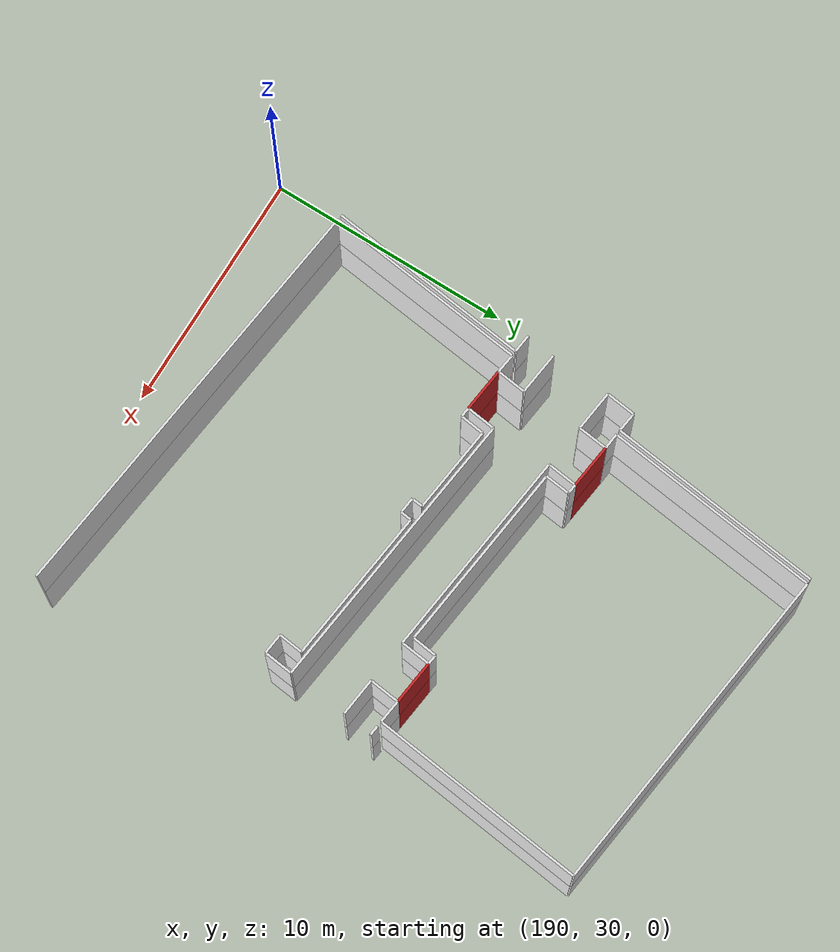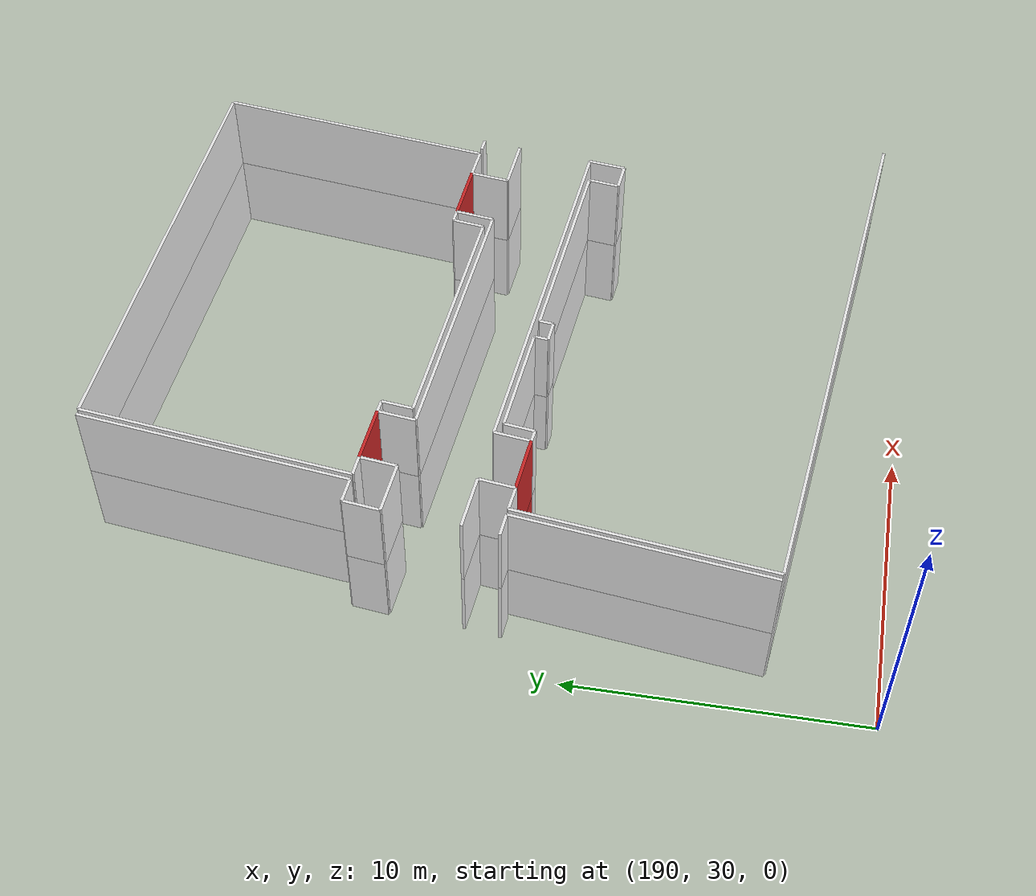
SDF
<sdf version="1.6">
 <world name="default">
  <model name="wall_194.4_46.6_1.5">
   <static>true</static>
   <pose>194.41500000000815 46.64999999990687 1.5 0 0 3.0193009299849303</pose>
   <link name="link">
    <visual name="visual">
     <geometry><box><size>1.8034688796345346 0.1 3</size></box></geometry>
     <material>
      <script><uri>file://media/materials/scripts/gazebo.material</uri><name>Gazebo/Red</name></script>
     </material>
    </visual>
    <collision name="collision"><geometry><box><size>1.8034688796345346 0.1 3</size></box></geometry></collision>
   </link>
  </model>
  <model name="wall_204.7_45.4_1.5">
   <static>true</static>
   <pose>204.74499999999534 45.40499999979511 1.5 0 0 3.0248080581431034</pose>
   <link name="link">
    <visual name="visual">
     <geometry><box><size>1.8022763384447233 0.1 3</size></box></geometry>
     <material>
      <script><uri>file://media/materials/scripts/gazebo.material</uri><name>Gazebo/Red</name></script>
     </material>
    </visual>
    <collision name="collision"><geometry><box><size>1.8022763384447233 0.1 3</size></box></geometry></collision>
   </link>
  </model>
  <model name="wall_194.0_41.8_1.5">
   <static>true</static>
   <pose>194.0350000000035 41.765000000130385 1.5 0 0 -0.11678459545045303</pose>
   <link name="link">
    <visual name="visual">
     <geometry><box><size>1.8022763383869123 0.1 3</size></box></geometry>
     <material>
      <script><uri>file://media/materials/scripts/gazebo.material</uri><name>Gazebo/Red</name></script>
     </material>
    </visual>
    <collision name="collision"><geometry><box><size>1.8022763383869123 0.1 3</size></box></geometry></collision>
   </link>
  </model>
  <model name="wall_194.4_46.6_4.5">
   <static>true</static>
   <pose>194.41500000000815 46.64999999990687 4.5 0 0 3.0193009299849303</pose>
   <link name="link">
    <visual name="visual">
     <geometry><box><size>1.8034688796345346 0.1 3</size></box></geometry>
     <material>
      <script><uri>file://media/materials/scripts/gazebo.material</uri><name>Gazebo/Red</name></script>
     </material>
    </visual>
    <collision name="collision"><geometry><box><size>1.8034688796345346 0.1 3</size></box></geometry></collision>
   </link>
  </model>
  <model name="wall_204.7_45.4_4.5">
   <static>true</static>
   <pose>204.74499999999534 45.40499999979511 4.5 0 0 3.0248080581431034</pose>
   <link name="link">
    <visual name="visual">
     <geometry><box><size>1.8022763384447233 0.1 3</size></box></geometry>
     <material>
      <script><uri>file://media/materials/scripts/gazebo.material</uri><name>Gazebo/Red</name></script>
     </material>
    </visual>
    <collision name="collision"><geometry><box><size>1.8022763384447233 0.1 3</size></box></geometry></collision>
   </link>
  </model>
  <model name="wall_194.0_41.8_4.5">
   <static>true</static>
   <pose>194.0350000000035 41.765000000130385 4.5 0 0 -0.11678459545045303</pose>
   <link name="link">
    <visual name="visual">
     <geometry><box><size>1.8022763383869123 0.1 3</size></box></geometry>
     <material>
      <script><uri>file://media/materials/scripts/gazebo.material</uri><name>Gazebo/Red</name></script>
     </material>
    </visual>
    <collision name="collision"><geometry><box><size>1.8022763383869123 0.1 3</size></box></geometry></collision>
   </link>
  </model>
  <model name="wall_193.2_51.3_1.5">
   <static>true</static>
   <pose>193.20999999999185 51.294999999925494 1.5 0 0 -1.6919586614511988</pose>
   <link name="link">
    <visual name="visual">
     <geometry><box><size>8.93550782004122 0.1 3</size></box></geometry>
     <material>
      <script><uri>file://media/materials/scripts/gazebo.material</uri><name>Gazebo/White</name></script>
     </material>
    </visual>
    <collision name="collision"><geometry><box><size>8.93550782004122 0.1 3</size></box></geometry></collision>
   </link>
  </model>
  <model name="wall_192.3_46.9_1.5">
   <static>true</static>
   <pose>192.26999999998952 46.90999999991618 1.5 0 0 3.0172376589266166</pose>
   <link name="link">
    <visual name="visual">
     <geometry><box><size>0.806225774829855 0.1 3</size></box></geometry>
     <material>
      <script><uri>file://media/materials/scripts/gazebo.material</uri><name>Gazebo/White</name></script>
     </material>
    </visual>
    <collision name="collision"><geometry><box><size>0.806225774829855 0.1 3</size></box></geometry></collision>
   </link>
  </model>
  <model name="wall_207.1_49.6_1.5">
   <static>true</static>
   <pose>207.11999999999534 49.62000000011176 1.5 0 0 -1.6918235466009592</pose>
   <link name="link">
    <visual name="visual">
     <geometry><box><size>8.945434589662185 0.1 3</size></box></geometry>
     <material>
      <script><uri>file://media/materials/scripts/gazebo.material</uri><name>Gazebo/White</name></script>
     </material>
    </visual>
    <collision name="collision"><geometry><box><size>8.945434589662185 0.1 3</size></box></geometry></collision>
   </link>
  </model>
  <model name="wall_206.1_45.2_1.5">
   <static>true</static>
   <pose>206.11000000001513 45.23999999999069 1.5 0 0 3.0146198643464803</pose>
   <link name="link">
    <visual name="visual">
     <geometry><box><size>0.9476286191960649 0.1 3</size></box></geometry>
     <material>
      <script><uri>file://media/materials/scripts/gazebo.material</uri><name>Gazebo/White</name></script>
     </material>
    </visual>
    <collision name="collision"><geometry><box><size>0.9476286191960649 0.1 3</size></box></geometry></collision>
   </link>
  </model>
  <model name="wall_203.7_45.5_1.5">
   <static>true</static>
   <pose>203.65499999999884 45.53499999991618 1.5 0 0 3.0140830946554305</pose>
   <link name="link">
    <visual name="visual">
     <geometry><box><size>0.39319206501840065 0.1 3</size></box></geometry>
     <material>
      <script><uri>file://media/materials/scripts/gazebo.material</uri><name>Gazebo/White</name></script>
     </material>
    </visual>
    <collision name="collision"><geometry><box><size>0.39319206501840065 0.1 3</size></box></geometry></collision>
   </link>
  </model>
  <model name="wall_203.4_45.1_1.5">
   <static>true</static>
   <pose>203.39500000001863 45.050000000046566 1.5 0 0 -1.6975638618984608</pose>
   <link name="link">
    <visual name="visual">
     <geometry><box><size>1.028250942153329 0.1 3</size></box></geometry>
     <material>
      <script><uri>file://media/materials/scripts/gazebo.material</uri><name>Gazebo/White</name></script>
     </material>
    </visual>
    <collision name="collision"><geometry><box><size>1.028250942153329 0.1 3</size></box></geometry></collision>
   </link>
  </model>
  <model name="wall_199.5_45.0_1.5">
   <static>true</static>
   <pose>199.46000000002095 45.00500000012107 1.5 0 0 3.022010892460215</pose>
   <link name="link">
    <visual name="visual">
     <geometry><box><size>7.795671876122522 0.1 3</size></box></geometry>
     <material>
      <script><uri>file://media/materials/scripts/gazebo.material</uri><name>Gazebo/White</name></script>
     </material>
    </visual>
    <collision name="collision"><geometry><box><size>7.795671876122522 0.1 3</size></box></geometry></collision>
   </link>
  </model>
  <model name="wall_195.7_46.0_1.5">
   <static>true</static>
   <pose>195.65000000002328 45.980000000214204 1.5 0 0 1.4536875822346544</pose>
   <link name="link">
    <visual name="visual">
     <geometry><box><size>1.0270345661353761 0.1 3</size></box></geometry>
     <material>
      <script><uri>file://media/materials/scripts/gazebo.material</uri><name>Gazebo/White</name></script>
     </material>
    </visual>
    <collision name="collision"><geometry><box><size>1.0270345661353761 0.1 3</size></box></geometry></collision>
   </link>
  </model>
  <model name="wall_195.5_46.5_1.5">
   <static>true</static>
   <pose>195.5100000000093 46.515000000130385 1.5 0 0 3.017237659508693</pose>
   <link name="link">
    <visual name="visual">
     <geometry><box><size>0.4031128874149275 0.1 3</size></box></geometry>
     <material>
      <script><uri>file://media/materials/scripts/gazebo.material</uri><name>Gazebo/White</name></script>
     </material>
    </visual>
    <collision name="collision"><geometry><box><size>0.4031128874149275 0.1 3</size></box></geometry></collision>
   </link>
  </model>
  <model name="wall_193.2_46.8_1.5">
   <static>true</static>
   <pose>193.19500000000698 46.794999999925494 1.5 0 0 3.034313797491963</pose>
   <link name="link">
    <visual name="visual">
     <geometry><box><size>0.6537583652023057 0.1 3</size></box></geometry>
     <material>
      <script><uri>file://media/materials/scripts/gazebo.material</uri><name>Gazebo/White</name></script>
     </material>
    </visual>
    <collision name="collision"><geometry><box><size>0.6537583652023057 0.1 3</size></box></geometry></collision>
   </link>
  </model>
  <model name="wall_193.4_51.3_1.5">
   <static>true</static>
   <pose>193.4100000000035 51.27000000001863 1.5 0 0 1.4497691069823746</pose>
   <link name="link">
    <visual name="visual">
     <geometry><box><size>8.945434589669212 0.1 3</size></box></geometry>
     <material>
      <script><uri>file://media/materials/scripts/gazebo.material</uri><name>Gazebo/White</name></script>
     </material>
    </visual>
    <collision name="collision"><geometry><box><size>8.945434589669212 0.1 3</size></box></geometry></collision>
   </link>
  </model>
  <model name="wall_200.8_54.9_1.5">
   <static>true</static>
   <pose>200.80499999999302 54.88500000000931 1.5 0 0 -0.1197740511061136</pose>
   <link name="link">
    <visual name="visual">
     <geometry><box><size>13.808931892028117 0.1 3</size></box></geometry>
     <material>
      <script><uri>file://media/materials/scripts/gazebo.material</uri><name>Gazebo/White</name></script>
     </material>
    </visual>
    <collision name="collision"><geometry><box><size>13.808931892028117 0.1 3</size></box></geometry></collision>
   </link>
  </model>
  <model name="wall_206.7_40.8_1.5">
   <static>true</static>
   <pose>206.7399999999907 40.83500000019558 1.5 0 0 1.4536875822110042</pose>
   <link name="link">
    <visual name="visual">
     <geometry><box><size>1.198206993749794 0.1 3</size></box></geometry>
     <material>
      <script><uri>file://media/materials/scripts/gazebo.material</uri><name>Gazebo/White</name></script>
     </material>
    </visual>
    <collision name="collision"><geometry><box><size>1.198206993749794 0.1 3</size></box></geometry></collision>
   </link>
  </model>
  <model name="wall_200.9_42.1_1.5">
   <static>true</static>
   <pose>200.94500000000698 42.140000000130385 1.5 0 0 3.0211217461725024</pose>
   <link name="link">
    <visual name="visual">
     <geometry><box><size>11.815637942969962 0.1 3</size></box></geometry>
     <material>
      <script><uri>file://media/materials/scripts/gazebo.material</uri><name>Gazebo/White</name></script>
     </material>
    </visual>
    <collision name="collision"><geometry><box><size>11.815637942969962 0.1 3</size></box></geometry></collision>
   </link>
  </model>
  <model name="wall_195.0_42.3_1.5">
   <static>true</static>
   <pose>195.00500000000466 42.25500000012107 1.5 0 0 -1.696185447161499</pose>
   <link name="link">
    <visual name="visual">
     <geometry><box><size>1.1994165247627664 0.1 3</size></box></geometry>
     <material>
      <script><uri>file://media/materials/scripts/gazebo.material</uri><name>Gazebo/White</name></script>
     </material>
    </visual>
    <collision name="collision"><geometry><box><size>1.1994165247627664 0.1 3</size></box></geometry></collision>
   </link>
  </model>
  <model name="wall_193.2_42.5_1.5">
   <static>true</static>
   <pose>193.2149999999965 42.46500000008382 1.5 0 0 1.4454072064764434</pose>
   <link name="link">
    <visual name="visual">
     <geometry><box><size>1.199416524755487 0.1 3</size></box></geometry>
     <material>
      <script><uri>file://media/materials/scripts/gazebo.material</uri><name>Gazebo/White</name></script>
     </material>
    </visual>
    <collision name="collision"><geometry><box><size>1.199416524755487 0.1 3</size></box></geometry></collision>
   </link>
  </model>
  <model name="wall_192.4_43.2_1.5">
   <static>true</static>
   <pose>192.41499999997905 43.16500000003725 1.5 0 0 3.02216372759244</pose>
   <link name="link">
    <visual name="visual">
     <geometry><box><size>1.7625549636775455 0.1 3</size></box></geometry>
     <material>
      <script><uri>file://media/materials/scripts/gazebo.material</uri><name>Gazebo/White</name></script>
     </material>
    </visual>
    <collision name="collision"><geometry><box><size>1.7625549636775455 0.1 3</size></box></geometry></collision>
   </link>
  </model>
  <model name="wall_191.8_46.4_1.5">
   <static>true</static>
   <pose>191.7949999999837 46.35499999998137 1.5 0 0 -1.6941340277173305</pose>
   <link name="link">
    <visual name="visual">
     <geometry><box><size>1.2192620718766056 0.1 3</size></box></geometry>
     <material>
      <script><uri>file://media/materials/scripts/gazebo.material</uri><name>Gazebo/White</name></script>
     </material>
    </visual>
    <collision name="collision"><geometry><box><size>1.2192620718766056 0.1 3</size></box></geometry></collision>
   </link>
  </model>
  <model name="wall_192.5_45.6_1.5">
   <static>true</static>
   <pose>192.54999999998836 45.64999999990687 1.5 0 0 -0.11990398547329398</pose>
   <link name="link">
    <visual name="visual">
     <geometry><box><size>1.6720047847367918 0.1 3</size></box></geometry>
     <material>
      <script><uri>file://media/materials/scripts/gazebo.material</uri><name>Gazebo/White</name></script>
     </material>
    </visual>
    <collision name="collision"><geometry><box><size>1.6720047847367918 0.1 3</size></box></geometry></collision>
   </link>
  </model>
  <model name="wall_193.5_46.2_1.5">
   <static>true</static>
   <pose>193.45000000001164 46.15499999979511 1.5 0 0 1.4556060450873045</pose>
   <link name="link">
    <visual name="visual">
     <geometry><box><size>1.2180722474113592 0.1 3</size></box></geometry>
     <material>
      <script><uri>file://media/materials/scripts/gazebo.material</uri><name>Gazebo/White</name></script>
     </material>
    </visual>
    <collision name="collision"><geometry><box><size>1.2180722474113592 0.1 3</size></box></geometry></collision>
   </link>
  </model>
  <model name="wall_195.2_45.9_1.5">
   <static>true</static>
   <pose>195.23499999998603 45.925000000046566 1.5 0 0 -1.692148327386132</pose>
   <link name="link">
    <visual name="visual">
     <geometry><box><size>1.239112585668132 0.1 3</size></box></geometry>
     <material>
      <script><uri>file://media/materials/scripts/gazebo.material</uri><name>Gazebo/White</name></script>
     </material>
    </visual>
    <collision name="collision"><geometry><box><size>1.239112585668132 0.1 3</size></box></geometry></collision>
   </link>
  </model>
  <model name="wall_199.4_44.8_1.5">
   <static>true</static>
   <pose>199.42999999999302 44.794999999925494 1.5 0 0 -0.12002913835868392</pose>
   <link name="link">
    <visual name="visual">
     <geometry><box><size>8.601889327419498 0.1 3</size></box></geometry>
     <material>
      <script><uri>file://media/materials/scripts/gazebo.material</uri><name>Gazebo/White</name></script>
     </material>
    </visual>
    <collision name="collision"><geometry><box><size>8.601889327419498 0.1 3</size></box></geometry></collision>
   </link>
  </model>
  <model name="wall_203.8_44.9_1.5">
   <static>true</static>
   <pose>203.77499999999418 44.894999999785796 1.5 0 0 1.4494443262502912</pose>
   <link name="link">
    <visual name="visual">
     <geometry><box><size>1.2391125856610858 0.1 3</size></box></geometry>
     <material>
      <script><uri>file://media/materials/scripts/gazebo.material</uri><name>Gazebo/White</name></script>
     </material>
    </visual>
    <collision name="collision"><geometry><box><size>1.2391125856610858 0.1 3</size></box></geometry></collision>
   </link>
  </model>
  <model name="wall_205.6_44.7_1.5">
   <static>true</static>
   <pose>205.56500000000233 44.67999999993481 1.5 0 0 -1.6911791476372433</pose>
   <link name="link">
    <visual name="visual">
     <geometry><box><size>1.249039630839017 0.1 3</size></box></geometry>
     <material>
      <script><uri>file://media/materials/scripts/gazebo.material</uri><name>Gazebo/White</name></script>
     </material>
    </visual>
    <collision name="collision"><geometry><box><size>1.249039630839017 0.1 3</size></box></geometry></collision>
   </link>
  </model>
  <model name="wall_206.3_44.0_1.5">
   <static>true</static>
   <pose>206.26999999998952 43.96999999997206 1.5 0 0 -0.11487660552311749</pose>
   <link name="link">
    <visual name="visual">
     <geometry><box><size>1.5703502794131905 0.1 3</size></box></geometry>
     <material>
      <script><uri>file://media/materials/scripts/gazebo.material</uri><name>Gazebo/White</name></script>
     </material>
    </visual>
    <collision name="collision"><geometry><box><size>1.5703502794131905 0.1 3</size></box></geometry></collision>
   </link>
  </model>
  <model name="wall_207.0_45.1_1.5">
   <static>true</static>
   <pose>206.99499999999534 45.13500000000931 1.5 0 0 3.0202406523571135</pose>
   <link name="link">
    <visual name="visual">
     <geometry><box><size>0.4130375286274464 0.1 3</size></box></geometry>
     <material>
      <script><uri>file://media/materials/scripts/gazebo.material</uri><name>Gazebo/White</name></script>
     </material>
    </visual>
    <collision name="collision"><geometry><box><size>0.4130375286274464 0.1 3</size></box></geometry></collision>
   </link>
  </model>
  <model name="wall_191.8_42.0_1.5">
   <static>true</static>
   <pose>191.77500000002328 42.03500000014901 1.5 0 0 3.0221637277673166</pose>
   <link name="link">
    <visual name="visual">
     <geometry><box><size>0.7553806987030962 0.1 3</size></box></geometry>
     <material>
      <script><uri>file://media/materials/scripts/gazebo.material</uri><name>Gazebo/White</name></script>
     </material>
    </visual>
    <collision name="collision"><geometry><box><size>0.7553806987030962 0.1 3</size></box></geometry></collision>
   </link>
  </model>
  <model name="wall_192.7_41.9_1.5">
   <static>true</static>
   <pose>192.74499999999534 41.920000000158325 1.5 0 0 -0.12591262579595308</pose>
   <link name="link">
    <visual name="visual">
     <geometry><box><size>0.7963039621133917 0.1 3</size></box></geometry>
     <material>
      <script><uri>file://media/materials/scripts/gazebo.material</uri><name>Gazebo/White</name></script>
     </material>
    </visual>
    <collision name="collision"><geometry><box><size>0.7963039621133917 0.1 3</size></box></geometry></collision>
   </link>
  </model>
  <model name="wall_195.1_41.6_1.5">
   <static>true</static>
   <pose>195.125 41.63500000000931 1.5 0 0 -0.12750955891553742</pose>
   <link name="link">
    <visual name="visual">
     <geometry><box><size>0.39319206507613574 0.1 3</size></box></geometry>
     <material>
      <script><uri>file://media/materials/scripts/gazebo.material</uri><name>Gazebo/White</name></script>
     </material>
    </visual>
    <collision name="collision"><geometry><box><size>0.39319206507613574 0.1 3</size></box></geometry></collision>
   </link>
  </model>
  <model name="wall_195.4_42.1_1.5">
   <static>true</static>
   <pose>195.3850000000093 42.10499999998137 1.5 0 0 1.4402302320197897</pose>
   <link name="link">
    <visual name="visual">
     <geometry><box><size>0.9984988735315504 0.1 3</size></box></geometry>
     <material>
      <script><uri>file://media/materials/scripts/gazebo.material</uri><name>Gazebo/White</name></script>
     </material>
    </visual>
    <collision name="collision"><geometry><box><size>0.9984988735315504 0.1 3</size></box></geometry></collision>
   </link>
  </model>
  <model name="wall_197.2_42.4_1.5">
   <static>true</static>
   <pose>197.22000000000116 42.390000000130385 1.5 0 0 -0.11809202839903185</pose>
   <link name="link">
    <visual name="visual">
     <geometry><box><size>3.5648281865735205 0.1 3</size></box></geometry>
     <material>
      <script><uri>file://media/materials/scripts/gazebo.material</uri><name>Gazebo/White</name></script>
     </material>
    </visual>
    <collision name="collision"><geometry><box><size>3.5648281865735205 0.1 3</size></box></geometry></collision>
   </link>
  </model>
  <model name="wall_199.0_42.0_1.5">
   <static>true</static>
   <pose>198.9649999999965 41.950000000186265 1.5 0 0 -1.6790669176390405</pose>
   <link name="link">
    <visual name="visual">
     <geometry><box><size>0.46270941201207827 0.1 3</size></box></geometry>
     <material>
      <script><uri>file://media/materials/scripts/gazebo.material</uri><name>Gazebo/White</name></script>
     </material>
    </visual>
    <collision name="collision"><geometry><box><size>0.46270941201207827 0.1 3</size></box></geometry></collision>
   </link>
  </model>
  <model name="wall_199.3_41.7_1.5">
   <static>true</static>
   <pose>199.26500000001397 41.68500000005588 1.5 0 0 -0.10727885609783018</pose>
   <link name="link">
    <visual name="visual">
     <geometry><box><size>0.6537583652023057 0.1 3</size></box></geometry>
     <material>
      <script><uri>file://media/materials/scripts/gazebo.material</uri><name>Gazebo/White</name></script>
     </material>
    </visual>
    <collision name="collision"><geometry><box><size>0.6537583652023057 0.1 3</size></box></geometry></collision>
   </link>
  </model>
  <model name="wall_199.6_41.9_1.5">
   <static>true</static>
   <pose>199.6150000000198 41.875 1.5 0 0 1.460139105691986</pose>
   <link name="link">
    <visual name="visual">
     <geometry><box><size>0.45276925709071053 0.1 3</size></box></geometry>
     <material>
      <script><uri>file://media/materials/scripts/gazebo.material</uri><name>Gazebo/White</name></script>
     </material>
    </visual>
    <collision name="collision"><geometry><box><size>0.45276925709071053 0.1 3</size></box></geometry></collision>
   </link>
  </model>
  <model name="wall_202.8_41.7_1.5">
   <static>true</static>
   <pose>202.7950000000128 41.71999999997206 1.5 0 0 -0.11986634401243841</pose>
   <link name="link">
    <visual name="visual">
     <geometry><box><size>6.3556038265721595 0.1 3</size></box></geometry>
     <material>
      <script><uri>file://media/materials/scripts/gazebo.material</uri><name>Gazebo/White</name></script>
     </material>
    </visual>
    <collision name="collision"><geometry><box><size>6.3556038265721595 0.1 3</size></box></geometry></collision>
   </link>
  </model>
  <model name="wall_205.9_40.8_1.5">
   <static>true</static>
   <pose>205.89000000001397 40.83999999985099 1.5 0 0 -1.6902252528086446</pose>
   <link name="link">
    <visual name="visual">
     <geometry><box><size>1.0071742649605788 0.1 3</size></box></geometry>
     <material>
      <script><uri>file://media/materials/scripts/gazebo.material</uri><name>Gazebo/White</name></script>
     </material>
    </visual>
    <collision name="collision"><geometry><box><size>1.0071742649605788 0.1 3</size></box></geometry></collision>
   </link>
  </model>
  <model name="wall_206.2_40.3_1.5">
   <static>true</static>
   <pose>206.25 40.29000000003725 1.5 0 0 -0.11848995872540334</pose>
   <link name="link">
    <visual name="visual">
     <geometry><box><size>0.8459314392258586 0.1 3</size></box></geometry>
     <material>
      <script><uri>file://media/materials/scripts/gazebo.material</uri><name>Gazebo/White</name></script>
     </material>
    </visual>
    <collision name="collision"><geometry><box><size>0.8459314392258586 0.1 3</size></box></geometry></collision>
   </link>
  </model>
  <model name="wall_200.0_32.6_1.5">
   <static>true</static>
   <pose>200.0350000000035 32.61499999999069 1.5 0 0 3.0219823298861535</pose>
   <link name="link">
    <visual name="visual">
     <geometry><box><size>17.515142020542825 0.1 3</size></box></geometry>
     <material>
      <script><uri>file://media/materials/scripts/gazebo.material</uri><name>Gazebo/White</name></script>
     </material>
    </visual>
    <collision name="collision"><geometry><box><size>17.515142020542825 0.1 3</size></box></geometry></collision>
   </link>
  </model>
  <model name="wall_191.8_37.8_1.5">
   <static>true</static>
   <pose>191.84500000000116 37.81500000017695 1.5 0 0 1.4498492313451194</pose>
   <link name="link">
    <visual name="visual">
     <geometry><box><size>8.371152847776102 0.1 3</size></box></geometry>
     <material>
      <script><uri>file://media/materials/scripts/gazebo.material</uri><name>Gazebo/White</name></script>
     </material>
    </visual>
    <collision name="collision"><geometry><box><size>8.371152847776102 0.1 3</size></box></geometry></collision>
   </link>
  </model>
  <model name="wall_193.2_51.3_4.5">
   <static>true</static>
   <pose>193.20999999999185 51.294999999925494 4.5 0 0 -1.6919586614511988</pose>
   <link name="link">
    <visual name="visual">
     <geometry><box><size>8.93550782004122 0.1 3</size></box></geometry>
     <material>
      <script><uri>file://media/materials/scripts/gazebo.material</uri><name>Gazebo/White</name></script>
     </material>
    </visual>
    <collision name="collision"><geometry><box><size>8.93550782004122 0.1 3</size></box></geometry></collision>
   </link>
  </model>
  <model name="wall_192.3_46.9_4.5">
   <static>true</static>
   <pose>192.26999999998952 46.90999999991618 4.5 0 0 3.0172376589266166</pose>
   <link name="link">
    <visual name="visual">
     <geometry><box><size>0.806225774829855 0.1 3</size></box></geometry>
     <material>
      <script><uri>file://media/materials/scripts/gazebo.material</uri><name>Gazebo/White</name></script>
     </material>
    </visual>
    <collision name="collision"><geometry><box><size>0.806225774829855 0.1 3</size></box></geometry></collision>
   </link>
  </model>
  <model name="wall_207.1_49.6_4.5">
   <static>true</static>
   <pose>207.11999999999534 49.62000000011176 4.5 0 0 -1.6918235466009592</pose>
   <link name="link">
    <visual name="visual">
     <geometry><box><size>8.945434589662185 0.1 3</size></box></geometry>
     <material>
      <script><uri>file://media/materials/scripts/gazebo.material</uri><name>Gazebo/White</name></script>
     </material>
    </visual>
    <collision name="collision"><geometry><box><size>8.945434589662185 0.1 3</size></box></geometry></collision>
   </link>
  </model>
  <model name="wall_206.1_45.2_4.5">
   <static>true</static>
   <pose>206.11000000001513 45.23999999999069 4.5 0 0 3.0146198643464803</pose>
   <link name="link">
    <visual name="visual">
     <geometry><box><size>0.9476286191960649 0.1 3</size></box></geometry>
     <material>
      <script><uri>file://media/materials/scripts/gazebo.material</uri><name>Gazebo/White</name></script>
     </material>
    </visual>
    <collision name="collision"><geometry><box><size>0.9476286191960649 0.1 3</size></box></geometry></collision>
   </link>
  </model>
  <model name="wall_203.7_45.5_4.5">
   <static>true</static>
   <pose>203.65499999999884 45.53499999991618 4.5 0 0 3.0140830946554305</pose>
   <link name="link">
    <visual name="visual">
     <geometry><box><size>0.39319206501840065 0.1 3</size></box></geometry>
     <material>
      <script><uri>file://media/materials/scripts/gazebo.material</uri><name>Gazebo/White</name></script>
     </material>
    </visual>
    <collision name="collision"><geometry><box><size>0.39319206501840065 0.1 3</size></box></geometry></collision>
   </link>
  </model>
  <model name="wall_203.4_45.1_4.5">
   <static>true</static>
   <pose>203.39500000001863 45.050000000046566 4.5 0 0 -1.6975638618984608</pose>
   <link name="link">
    <visual name="visual">
     <geometry><box><size>1.028250942153329 0.1 3</size></box></geometry>
     <material>
      <script><uri>file://media/materials/scripts/gazebo.material</uri><name>Gazebo/White</name></script>
     </material>
    </visual>
    <collision name="collision"><geometry><box><size>1.028250942153329 0.1 3</size></box></geometry></collision>
   </link>
  </model>
  <model name="wall_199.5_45.0_4.5">
   <static>true</static>
   <pose>199.46000000002095 45.00500000012107 4.5 0 0 3.022010892460215</pose>
   <link name="link">
    <visual name="visual">
     <geometry><box><size>7.795671876122522 0.1 3</size></box></geometry>
     <material>
      <script><uri>file://media/materials/scripts/gazebo.material</uri><name>Gazebo/White</name></script>
     </material>
    </visual>
    <collision name="collision"><geometry><box><size>7.795671876122522 0.1 3</size></box></geometry></collision>
   </link>
  </model>
  <model name="wall_195.7_46.0_4.5">
   <static>true</static>
   <pose>195.65000000002328 45.980000000214204 4.5 0 0 1.4536875822346544</pose>
   <link name="link">
    <visual name="visual">
     <geometry><box><size>1.0270345661353761 0.1 3</size></box></geometry>
     <material>
      <script><uri>file://media/materials/scripts/gazebo.material</uri><name>Gazebo/White</name></script>
     </material>
    </visual>
    <collision name="collision"><geometry><box><size>1.0270345661353761 0.1 3</size></box></geometry></collision>
   </link>
  </model>
  <model name="wall_195.5_46.5_4.5">
   <static>true</static>
   <pose>195.5100000000093 46.515000000130385 4.5 0 0 3.017237659508693</pose>
   <link name="link">
    <visual name="visual">
     <geometry><box><size>0.4031128874149275 0.1 3</size></box></geometry>
     <material>
      <script><uri>file://media/materials/scripts/gazebo.material</uri><name>Gazebo/White</name></script>
     </material>
    </visual>
    <collision name="collision"><geometry><box><size>0.4031128874149275 0.1 3</size></box></geometry></collision>
   </link>
  </model>
  <model name="wall_193.2_46.8_4.5">
   <static>true</static>
   <pose>193.19500000000698 46.794999999925494 4.5 0 0 3.034313797491963</pose>
   <link name="link">
    <visual name="visual">
     <geometry><box><size>0.6537583652023057 0.1 3</size></box></geometry>
     <material>
      <script><uri>file://media/materials/scripts/gazebo.material</uri><name>Gazebo/White</name></script>
     </material>
    </visual>
    <collision name="collision"><geometry><box><size>0.6537583652023057 0.1 3</size></box></geometry></collision>
   </link>
  </model>
  <model name="wall_193.4_51.3_4.5">
   <static>true</static>
   <pose>193.4100000000035 51.27000000001863 4.5 0 0 1.4497691069823746</pose>
   <link name="link">
    <visual name="visual">
     <geometry><box><size>8.945434589669212 0.1 3</size></box></geometry>
     <material>
      <script><uri>file://media/materials/scripts/gazebo.material</uri><name>Gazebo/White</name></script>
     </material>
    </visual>
    <collision name="collision"><geometry><box><size>8.945434589669212 0.1 3</size></box></geometry></collision>
   </link>
  </model>
  <model name="wall_200.8_54.9_4.5">
   <static>true</static>
   <pose>200.80499999999302 54.88500000000931 4.5 0 0 -0.1197740511061136</pose>
   <link name="link">
    <visual name="visual">
     <geometry><box><size>13.808931892028117 0.1 3</size></box></geometry>
     <material>
      <script><uri>file://media/materials/scripts/gazebo.material</uri><name>Gazebo/White</name></script>
     </material>
    </visual>
    <collision name="collision"><geometry><box><size>13.808931892028117 0.1 3</size></box></geometry></collision>
   </link>
  </model>
  <model name="wall_206.7_40.8_4.5">
   <static>true</static>
   <pose>206.7399999999907 40.83500000019558 4.5 0 0 1.4536875822110042</pose>
   <link name="link">
    <visual name="visual">
     <geometry><box><size>1.198206993749794 0.1 3</size></box></geometry>
     <material>
      <script><uri>file://media/materials/scripts/gazebo.material</uri><name>Gazebo/White</name></script>
     </material>
    </visual>
    <collision name="collision"><geometry><box><size>1.198206993749794 0.1 3</size></box></geometry></collision>
   </link>
  </model>
  <model name="wall_200.9_42.1_4.5">
   <static>true</static>
   <pose>200.94500000000698 42.140000000130385 4.5 0 0 3.0211217461725024</pose>
   <link name="link">
    <visual name="visual">
     <geometry><box><size>11.815637942969962 0.1 3</size></box></geometry>
     <material>
      <script><uri>file://media/materials/scripts/gazebo.material</uri><name>Gazebo/White</name></script>
     </material>
    </visual>
    <collision name="collision"><geometry><box><size>11.815637942969962 0.1 3</size></box></geometry></collision>
   </link>
  </model>
  <model name="wall_195.0_42.3_4.5">
   <static>true</static>
   <pose>195.00500000000466 42.25500000012107 4.5 0 0 -1.696185447161499</pose>
   <link name="link">
    <visual name="visual">
     <geometry><box><size>1.1994165247627664 0.1 3</size></box></geometry>
     <material>
      <script><uri>file://media/materials/scripts/gazebo.material</uri><name>Gazebo/White</name></script>
     </material>
    </visual>
    <collision name="collision"><geometry><box><size>1.1994165247627664 0.1 3</size></box></geometry></collision>
   </link>
  </model>
  <model name="wall_193.2_42.5_4.5">
   <static>true</static>
   <pose>193.2149999999965 42.46500000008382 4.5 0 0 1.4454072064764434</pose>
   <link name="link">
    <visual name="visual">
     <geometry><box><size>1.199416524755487 0.1 3</size></box></geometry>
     <material>
      <script><uri>file://media/materials/scripts/gazebo.material</uri><name>Gazebo/White</name></script>
     </material>
    </visual>
    <collision name="collision"><geometry><box><size>1.199416524755487 0.1 3</size></box></geometry></collision>
   </link>
  </model>
  <model name="wall_192.4_43.2_4.5">
   <static>true</static>
   <pose>192.41499999997905 43.16500000003725 4.5 0 0 3.02216372759244</pose>
   <link name="link">
    <visual name="visual">
     <geometry><box><size>1.7625549636775455 0.1 3</size></box></geometry>
     <material>
      <script><uri>file://media/materials/scripts/gazebo.material</uri><name>Gazebo/White</name></script>
     </material>
    </visual>
    <collision name="collision"><geometry><box><size>1.7625549636775455 0.1 3</size></box></geometry></collision>
   </link>
  </model>
  <model name="wall_191.8_46.4_4.5">
   <static>true</static>
   <pose>191.7949999999837 46.35499999998137 4.5 0 0 -1.6941340277173305</pose>
   <link name="link">
    <visual name="visual">
     <geometry><box><size>1.2192620718766056 0.1 3</size></box></geometry>
     <material>
      <script><uri>file://media/materials/scripts/gazebo.material</uri><name>Gazebo/White</name></script>
     </material>
    </visual>
    <collision name="collision"><geometry><box><size>1.2192620718766056 0.1 3</size></box></geometry></collision>
   </link>
  </model>
  <model name="wall_192.5_45.6_4.5">
   <static>true</static>
   <pose>192.54999999998836 45.64999999990687 4.5 0 0 -0.11990398547329398</pose>
   <link name="link">
    <visual name="visual">
     <geometry><box><size>1.6720047847367918 0.1 3</size></box></geometry>
     <material>
      <script><uri>file://media/materials/scripts/gazebo.material</uri><name>Gazebo/White</name></script>
     </material>
    </visual>
    <collision name="collision"><geometry><box><size>1.6720047847367918 0.1 3</size></box></geometry></collision>
   </link>
  </model>
  <model name="wall_193.5_46.2_4.5">
   <static>true</static>
   <pose>193.45000000001164 46.15499999979511 4.5 0 0 1.4556060450873045</pose>
   <link name="link">
    <visual name="visual">
     <geometry><box><size>1.2180722474113592 0.1 3</size></box></geometry>
     <material>
      <script><uri>file://media/materials/scripts/gazebo.material</uri><name>Gazebo/White</name></script>
     </material>
    </visual>
    <collision name="collision"><geometry><box><size>1.2180722474113592 0.1 3</size></box></geometry></collision>
   </link>
  </model>
  <model name="wall_195.2_45.9_4.5">
   <static>true</static>
   <pose>195.23499999998603 45.925000000046566 4.5 0 0 -1.692148327386132</pose>
   <link name="link">
    <visual name="visual">
     <geometry><box><size>1.239112585668132 0.1 3</size></box></geometry>
     <material>
      <script><uri>file://media/materials/scripts/gazebo.material</uri><name>Gazebo/White</name></script>
     </material>
    </visual>
    <collision name="collision"><geometry><box><size>1.239112585668132 0.1 3</size></box></geometry></collision>
   </link>
  </model>
  <model name="wall_199.4_44.8_4.5">
   <static>true</static>
   <pose>199.42999999999302 44.794999999925494 4.5 0 0 -0.12002913835868392</pose>
   <link name="link">
    <visual name="visual">
     <geometry><box><size>8.601889327419498 0.1 3</size></box></geometry>
     <material>
      <script><uri>file://media/materials/scripts/gazebo.material</uri><name>Gazebo/White</name></script>
     </material>
    </visual>
    <collision name="collision"><geometry><box><size>8.601889327419498 0.1 3</size></box></geometry></collision>
   </link>
  </model>
  <model name="wall_203.8_44.9_4.5">
   <static>true</static>
   <pose>203.77499999999418 44.894999999785796 4.5 0 0 1.4494443262502912</pose>
   <link name="link">
    <visual name="visual">
     <geometry><box><size>1.2391125856610858 0.1 3</size></box></geometry>
     <material>
      <script><uri>file://media/materials/scripts/gazebo.material</uri><name>Gazebo/White</name></script>
     </material>
    </visual>
    <collision name="collision"><geometry><box><size>1.2391125856610858 0.1 3</size></box></geometry></collision>
   </link>
  </model>
  <model name="wall_205.6_44.7_4.5">
   <static>true</static>
   <pose>205.56500000000233 44.67999999993481 4.5 0 0 -1.6911791476372433</pose>
   <link name="link">
    <visual name="visual">
     <geometry><box><size>1.249039630839017 0.1 3</size></box></geometry>
     <material>
      <script><uri>file://media/materials/scripts/gazebo.material</uri><name>Gazebo/White</name></script>
     </material>
    </visual>
    <collision name="collision"><geometry><box><size>1.249039630839017 0.1 3</size></box></geometry></collision>
   </link>
  </model>
  <model name="wall_206.3_44.0_4.5">
   <static>true</static>
   <pose>206.26999999998952 43.96999999997206 4.5 0 0 -0.11487660552311749</pose>
   <link name="link">
    <visual name="visual">
     <geometry><box><size>1.5703502794131905 0.1 3</size></box></geometry>
     <material>
      <script><uri>file://media/materials/scripts/gazebo.material</uri><name>Gazebo/White</name></script>
     </material>
    </visual>
    <collision name="collision"><geometry><box><size>1.5703502794131905 0.1 3</size></box></geometry></collision>
   </link>
  </model>
  <model name="wall_207.0_45.1_4.5">
   <static>true</static>
   <pose>206.99499999999534 45.13500000000931 4.5 0 0 3.0202406523571135</pose>
   <link name="link">
    <visual name="visual">
     <geometry><box><size>0.4130375286274464 0.1 3</size></box></geometry>
     <material>
      <script><uri>file://media/materials/scripts/gazebo.material</uri><name>Gazebo/White</name></script>
     </material>
    </visual>
    <collision name="collision"><geometry><box><size>0.4130375286274464 0.1 3</size></box></geometry></collision>
   </link>
  </model>
  <model name="wall_191.6_37.8_4.5">
   <static>true</static>
   <pose>191.64500000001863 37.83500000019558 4.5 0 0 1.449849231338217</pose>
   <link name="link">
    <visual name="visual">
     <geometry><box><size>8.371152847783126 0.1 3</size></box></geometry>
     <material>
      <script><uri>file://media/materials/scripts/gazebo.material</uri><name>Gazebo/White</name></script>
     </material>
    </visual>
    <collision name="collision"><geometry><box><size>8.371152847783126 0.1 3</size></box></geometry></collision>
   </link>
  </model>
  <model name="wall_191.8_42.0_4.5">
   <static>true</static>
   <pose>191.77500000002328 42.03500000014901 4.5 0 0 3.0221637277673166</pose>
   <link name="link">
    <visual name="visual">
     <geometry><box><size>0.7553806987030962 0.1 3</size></box></geometry>
     <material>
      <script><uri>file://media/materials/scripts/gazebo.material</uri><name>Gazebo/White</name></script>
     </material>
    </visual>
    <collision name="collision"><geometry><box><size>0.7553806987030962 0.1 3</size></box></geometry></collision>
   </link>
  </model>
  <model name="wall_192.7_41.9_4.5">
   <static>true</static>
   <pose>192.74499999999534 41.920000000158325 4.5 0 0 -0.12591262579595308</pose>
   <link name="link">
    <visual name="visual">
     <geometry><box><size>0.7963039621133917 0.1 3</size></box></geometry>
     <material>
      <script><uri>file://media/materials/scripts/gazebo.material</uri><name>Gazebo/White</name></script>
     </material>
    </visual>
    <collision name="collision"><geometry><box><size>0.7963039621133917 0.1 3</size></box></geometry></collision>
   </link>
  </model>
  <model name="wall_195.1_41.6_4.5">
   <static>true</static>
   <pose>195.125 41.63500000000931 4.5 0 0 -0.12750955891553742</pose>
   <link name="link">
    <visual name="visual">
     <geometry><box><size>0.39319206507613574 0.1 3</size></box></geometry>
     <material>
      <script><uri>file://media/materials/scripts/gazebo.material</uri><name>Gazebo/White</name></script>
     </material>
    </visual>
    <collision name="collision"><geometry><box><size>0.39319206507613574 0.1 3</size></box></geometry></collision>
   </link>
  </model>
  <model name="wall_195.4_42.1_4.5">
   <static>true</static>
   <pose>195.3850000000093 42.10499999998137 4.5 0 0 1.4402302320197897</pose>
   <link name="link">
    <visual name="visual">
     <geometry><box><size>0.9984988735315504 0.1 3</size></box></geometry>
     <material>
      <script><uri>file://media/materials/scripts/gazebo.material</uri><name>Gazebo/White</name></script>
     </material>
    </visual>
    <collision name="collision"><geometry><box><size>0.9984988735315504 0.1 3</size></box></geometry></collision>
   </link>
  </model>
  <model name="wall_197.2_42.4_4.5">
   <static>true</static>
   <pose>197.22000000000116 42.390000000130385 4.5 0 0 -0.11809202839903185</pose>
   <link name="link">
    <visual name="visual">
     <geometry><box><size>3.5648281865735205 0.1 3</size></box></geometry>
     <material>
      <script><uri>file://media/materials/scripts/gazebo.material</uri><name>Gazebo/White</name></script>
     </material>
    </visual>
    <collision name="collision"><geometry><box><size>3.5648281865735205 0.1 3</size></box></geometry></collision>
   </link>
  </model>
  <model name="wall_199.0_42.0_4.5">
   <static>true</static>
   <pose>198.9649999999965 41.950000000186265 4.5 0 0 -1.6790669176390405</pose>
   <link name="link">
    <visual name="visual">
     <geometry><box><size>0.46270941201207827 0.1 3</size></box></geometry>
     <material>
      <script><uri>file://media/materials/scripts/gazebo.material</uri><name>Gazebo/White</name></script>
     </material>
    </visual>
    <collision name="collision"><geometry><box><size>0.46270941201207827 0.1 3</size></box></geometry></collision>
   </link>
  </model>
  <model name="wall_199.3_41.7_4.5">
   <static>true</static>
   <pose>199.26500000001397 41.68500000005588 4.5 0 0 -0.10727885609783018</pose>
   <link name="link">
    <visual name="visual">
     <geometry><box><size>0.6537583652023057 0.1 3</size></box></geometry>
     <material>
      <script><uri>file://media/materials/scripts/gazebo.material</uri><name>Gazebo/White</name></script>
     </material>
    </visual>
    <collision name="collision"><geometry><box><size>0.6537583652023057 0.1 3</size></box></geometry></collision>
   </link>
  </model>
  <model name="wall_199.6_41.9_4.5">
   <static>true</static>
   <pose>199.6150000000198 41.875 4.5 0 0 1.460139105691986</pose>
   <link name="link">
    <visual name="visual">
     <geometry><box><size>0.45276925709071053 0.1 3</size></box></geometry>
     <material>
      <script><uri>file://media/materials/scripts/gazebo.material</uri><name>Gazebo/White</name></script>
     </material>
    </visual>
    <collision name="collision"><geometry><box><size>0.45276925709071053 0.1 3</size></box></geometry></collision>
   </link>
  </model>
  <model name="wall_202.8_41.7_4.5">
   <static>true</static>
   <pose>202.7950000000128 41.71999999997206 4.5 0 0 -0.11986634401243841</pose>
   <link name="link">
    <visual name="visual">
     <geometry><box><size>6.3556038265721595 0.1 3</size></box></geometry>
     <material>
      <script><uri>file://media/materials/scripts/gazebo.material</uri><name>Gazebo/White</name></script>
     </material>
    </visual>
    <collision name="collision"><geometry><box><size>6.3556038265721595 0.1 3</size></box></geometry></collision>
   </link>
  </model>
  <model name="wall_205.9_40.8_4.5">
   <static>true</static>
   <pose>205.89000000001397 40.83999999985099 4.5 0 0 -1.6902252528086446</pose>
   <link name="link">
    <visual name="visual">
     <geometry><box><size>1.0071742649605788 0.1 3</size></box></geometry>
     <material>
      <script><uri>file://media/materials/scripts/gazebo.material</uri><name>Gazebo/White</name></script>
     </material>
    </visual>
    <collision name="collision"><geometry><box><size>1.0071742649605788 0.1 3</size></box></geometry></collision>
   </link>
  </model>
  <model name="wall_206.2_40.3_4.5">
   <static>true</static>
   <pose>206.25 40.29000000003725 4.5 0 0 -0.11848995872540334</pose>
   <link name="link">
    <visual name="visual">
     <geometry><box><size>0.8459314392258586 0.1 3</size></box></geometry>
     <material>
      <script><uri>file://media/materials/scripts/gazebo.material</uri><name>Gazebo/White</name></script>
     </material>
    </visual>
    <collision name="collision"><geometry><box><size>0.8459314392258586 0.1 3</size></box></geometry></collision>
   </link>
  </model>
  <model name="wall_200.0_32.6_4.5">
   <static>true</static>
   <pose>200.0350000000035 32.61499999999069 4.5 0 0 3.0219823298861535</pose>
   <link name="link">
    <visual name="visual">
     <geometry><box><size>17.515142020542825 0.1 3</size></box></geometry>
     <material>
      <script><uri>file://media/materials/scripts/gazebo.material</uri><name>Gazebo/White</name></script>
     </material>
    </visual>
    <collision name="collision"><geometry><box><size>17.515142020542825 0.1 3</size></box></geometry></collision>
   </link>
  </model>
  <model name="wall_191.8_37.8_4.5">
   <static>true</static>
   <pose>191.84500000000116 37.81500000017695 4.5 0 0 1.4498492313451194</pose>
   <link name="link">
    <visual name="visual">
     <geometry><box><size>8.371152847776102 0.1 3</size></box></geometry>
     <material>
      <script><uri>file://media/materials/scripts/gazebo.material</uri><name>Gazebo/White</name></script>
     </material>
    </visual>
    <collision name="collision"><geometry><box><size>8.371152847776102 0.1 3</size></box></geometry></collision>
   </link>
  </model>
 </world>
</sdf>
